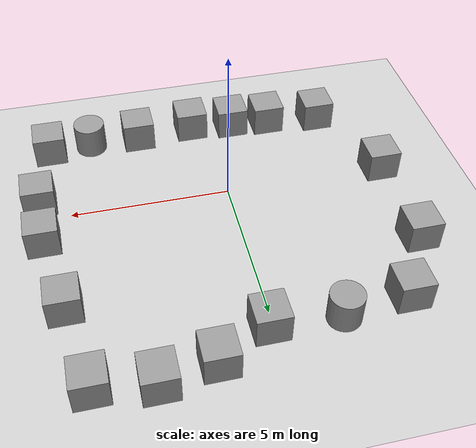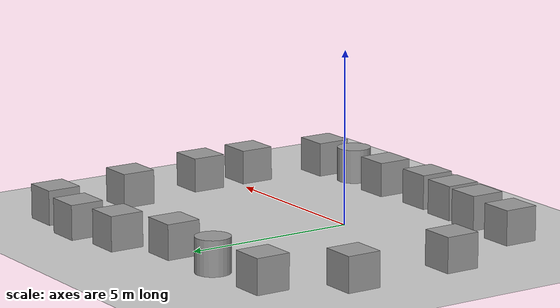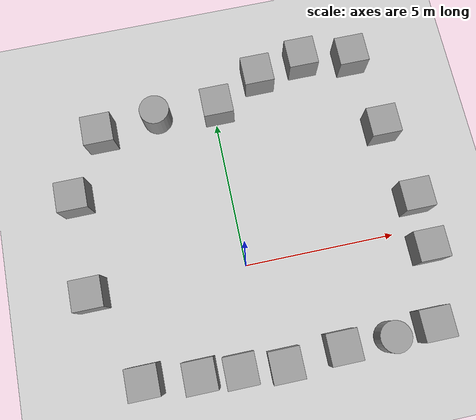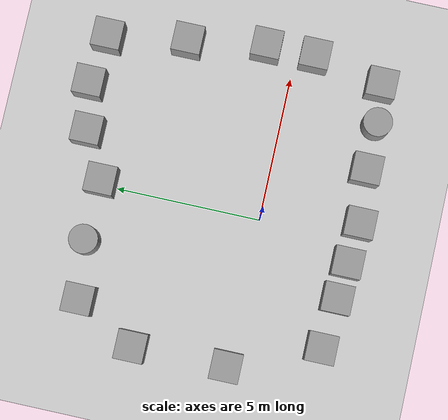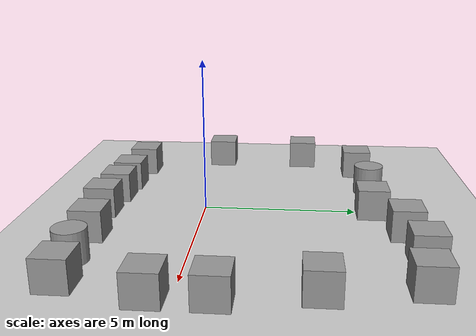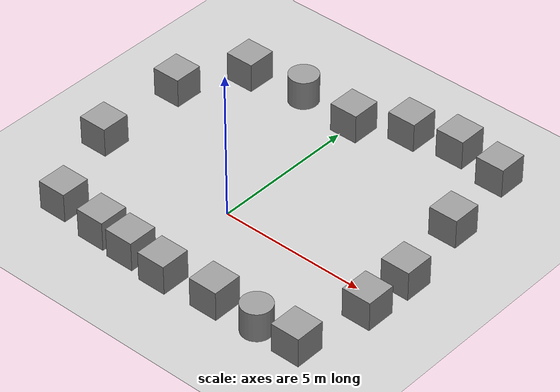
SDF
<sdf version="1.6">
 <world name="default">
  <light name="sun" type="directional">
   <pose>0 0 10 0 -0 0</pose>
   <diffuse>0.8 0.8 0.8 1</diffuse>
   <specular>0.1 0.1 0.1 1</specular>
   <attenuation>
    <range>1000</range>
    <constant>0.9</constant>
    <linear>0.01</linear>
    <quadratic>0.001</quadratic>
   </attenuation>
   <direction>-0.5 0.5 -1</direction>
  </light>
  <model name="ground_plane">
   <static>1</static>
   <link name="link">
    <collision name="collision">
     <geometry><plane><normal>0 0 1</normal><size>100 100</size></plane></geometry>
     <surface><friction><ode><mu>100</mu><mu2>50</mu2></ode></friction></surface>
    </collision>
    <visual name="visual">
     <cast_shadows>0</cast_shadows>
     <geometry><plane><normal>0 0 1</normal><size>100 100</size></plane></geometry>
     <material>
      <script><uri>file://media/materials/scripts/gazebo.material</uri><name>Gazebo/Grey</name></script>
     </material>
    </visual>
   </link>
  </model>
  <gravity>0 0 -9.8</gravity>
  <magnetic_field>6e-06 2.3e-05 -4.2e-05</magnetic_field>
  <atmosphere type="adiabatic"/>
  <physics name="default_physics" default="0" type="ode">
   <max_step_size>0.001</max_step_size>
   <real_time_factor>1</real_time_factor>
   <real_time_update_rate>1000</real_time_update_rate>
  </physics>
  <scene><ambient>0.4 0.4 0.4 1</ambient><background>0.7 0.7 0.7 1</background><shadows>1</shadows></scene>
  <spherical_coordinates>
   <surface_model>EARTH_WGS84</surface_model>
   <latitude_deg>0</latitude_deg>
   <longitude_deg>0</longitude_deg>
   <elevation>0</elevation>
   <heading_deg>0</heading_deg>
  </spherical_coordinates>
  <model name="unit_box_0">
   <pose>-0.811635 -3.18969 0.499995 -1e-05 0 0</pose>
   <link name="link">
    <inertial>
     <mass>1</mass>
     <inertia>
      <ixx>0.166667</ixx>
      <ixy>0</ixy>
      <ixz>0</ixz>
      <iyy>0.166667</iyy>
      <iyz>0</iyz>
      <izz>0.166667</izz>
     </inertia>
    </inertial>
    <collision name="collision"><geometry><box><size>1 1 1</size></box></geometry></collision>
    <visual name="visual">
     <geometry><box><size>1 1 1</size></box></geometry>
     <material>
      <script><name>Gazebo/Grey</name><uri>file://media/materials/scripts/gazebo.material</uri></script>
     </material>
    </visual>
   </link>
  </model>
  <model name="unit_box_1">
   <pose>0.577289 -3.31695 0.499995 -1e-05 0 0</pose>
   <link name="link">
    <inertial>
     <mass>1</mass>
     <inertia>
      <ixx>0.166667</ixx>
      <ixy>0</ixy>
      <ixz>0</ixz>
      <iyy>0.166667</iyy>
      <iyz>0</iyz>
      <izz>0.166667</izz>
     </inertia>
    </inertial>
    <collision name="collision"><geometry><box><size>1 1 1</size></box></geometry></collision>
    <visual name="visual">
     <geometry><box><size>1 1 1</size></box></geometry>
     <material>
      <script><name>Gazebo/Grey</name><uri>file://media/materials/scripts/gazebo.material</uri></script>
     </material>
    </visual>
   </link>
  </model>
  <model name="unit_box_2">
   <pose>-5.05961 0.060177 0.499995 0 1e-05 0</pose>
   <link name="link">
    <inertial>
     <mass>1</mass>
     <inertia>
      <ixx>0.166667</ixx>
      <ixy>0</ixy>
      <ixz>0</ixz>
      <iyy>0.166667</iyy>
      <iyz>0</iyz>
      <izz>0.166667</izz>
     </inertia>
    </inertial>
    <collision name="collision"><geometry><box><size>1 1 1</size></box></geometry></collision>
    <visual name="visual">
     <geometry><box><size>1 1 1</size></box></geometry>
     <material>
      <script><name>Gazebo/Grey</name><uri>file://media/materials/scripts/gazebo.material</uri></script>
     </material>
    </visual>
   </link>
  </model>
  <model name="unit_cylinder_0">
   <pose>-1.95702 5.62659 0.499993 -3e-06 3e-06 0</pose>
   <link name="link">
    <inertial>
     <mass>1</mass>
     <inertia><ixx>0.145833</ixx><ixy>0</ixy><ixz>0</ixz><iyy>0.145833</iyy><iyz>0</iyz><izz>0.125</izz></inertia>
    </inertial>
    <collision name="collision">
     <geometry><cylinder><radius>0.5</radius><length>1</length></cylinder></geometry>
    </collision>
    <visual name="visual">
     <geometry><cylinder><radius>0.5</radius><length>1</length></cylinder></geometry>
     <material>
      <script><name>Gazebo/Grey</name><uri>file://media/materials/scripts/gazebo.material</uri></script>
     </material>
    </visual>
   </link>
  </model>
  <model name="unit_box_3">
   <pose>-5.09488 3.29197 0.499995 0 1e-05 0</pose>
   <link name="link">
    <inertial>
     <mass>1</mass>
     <inertia>
      <ixx>0.166667</ixx>
      <ixy>0</ixy>
      <ixz>0</ixz>
      <iyy>0.166667</iyy>
      <iyz>0</iyz>
      <izz>0.166667</izz>
     </inertia>
    </inertial>
    <collision name="collision"><geometry><box><size>1 1 1</size></box></geometry></collision>
    <visual name="visual">
     <geometry><box><size>1 1 1</size></box></geometry>
     <material>
      <script><name>Gazebo/Grey</name><uri>file://media/materials/scripts/gazebo.material</uri></script>
     </material>
    </visual>
   </link>
  </model>
  <model name="unit_box_4">
   <pose>0.142793 5.53418 0.499995 0 1e-05 0</pose>
   <link name="link">
    <inertial>
     <mass>1</mass>
     <inertia>
      <ixx>0.166667</ixx>
      <ixy>0</ixy>
      <ixz>0</ixz>
      <iyy>0.166667</iyy>
      <iyz>0</iyz>
      <izz>0.166667</izz>
     </inertia>
    </inertial>
    <collision name="collision"><geometry><box><size>1 1 1</size></box></geometry></collision>
    <visual name="visual">
     <geometry><box><size>1 1 1</size></box></geometry>
     <material>
      <script><name>Gazebo/Grey</name><uri>file://media/materials/scripts/gazebo.material</uri></script>
     </material>
    </visual>
   </link>
  </model>
  <model name="unit_box_5">
   <pose>2.41988 -3.15817 0.499995 0 1e-05 0</pose>
   <link name="link">
    <inertial>
     <mass>1</mass>
     <inertia>
      <ixx>0.166667</ixx>
      <ixy>0</ixy>
      <ixz>0</ixz>
      <iyy>0.166667</iyy>
      <iyz>0</iyz>
      <izz>0.166667</izz>
     </inertia>
    </inertial>
    <collision name="collision"><geometry><box><size>1 1 1</size></box></geometry></collision>
    <visual name="visual">
     <geometry><box><size>1 1 1</size></box></geometry>
     <material>
      <script><name>Gazebo/Grey</name><uri>file://media/materials/scripts/gazebo.material</uri></script>
     </material>
    </visual>
   </link>
  </model>
  <model name="unit_box_6">
   <pose>-2.05849 -3.09481 0.499995 -1e-05 0 0</pose>
   <link name="link">
    <inertial>
     <mass>1</mass>
     <inertia>
      <ixx>0.166667</ixx>
      <ixy>0</ixy>
      <ixz>0</ixz>
      <iyy>0.166667</iyy>
      <iyz>0</iyz>
      <izz>0.166667</izz>
     </inertia>
    </inertial>
    <collision name="collision"><geometry><box><size>1 1 1</size></box></geometry></collision>
    <visual name="visual">
     <geometry><box><size>1 1 1</size></box></geometry>
     <material>
      <script><name>Gazebo/Grey</name><uri>file://media/materials/scripts/gazebo.material</uri></script>
     </material>
    </visual>
   </link>
  </model>
  <model name="unit_box_7">
   <pose>-3.78601 -2.91507 0.499995 0 1e-05 0</pose>
   <link name="link">
    <inertial>
     <mass>1</mass>
     <inertia>
      <ixx>0.166667</ixx>
      <ixy>0</ixy>
      <ixz>0</ixz>
      <iyy>0.166667</iyy>
      <iyz>0</iyz>
      <izz>0.166667</izz>
     </inertia>
    </inertial>
    <collision name="collision"><geometry><box><size>1 1 1</size></box></geometry></collision>
    <visual name="visual">
     <geometry><box><size>1 1 1</size></box></geometry>
     <material>
      <script><name>Gazebo/Grey</name><uri>file://media/materials/scripts/gazebo.material</uri></script>
     </material>
    </visual>
   </link>
  </model>
  <model name="unit_box_8">
   <pose>5.4695 3.70835 0.499995 1e-05 -0 0</pose>
   <link name="link">
    <inertial>
     <mass>1</mass>
     <inertia>
      <ixx>0.166667</ixx>
      <ixy>0</ixy>
      <ixz>0</ixz>
      <iyy>0.166667</iyy>
      <iyz>0</iyz>
      <izz>0.166667</izz>
     </inertia>
    </inertial>
    <collision name="collision"><geometry><box><size>1 1 1</size></box></geometry></collision>
    <visual name="visual">
     <geometry><box><size>1 1 1</size></box></geometry>
     <material>
      <script><name>Gazebo/Grey</name><uri>file://media/materials/scripts/gazebo.material</uri></script>
     </material>
    </visual>
   </link>
  </model>
  <model name="unit_box_9">
   <pose>5.8902 1.0458 0.499995 0 1e-05 0</pose>
   <link name="link">
    <inertial>
     <mass>1</mass>
     <inertia>
      <ixx>0.166667</ixx>
      <ixy>0</ixy>
      <ixz>0</ixz>
      <iyy>0.166667</iyy>
      <iyz>0</iyz>
      <izz>0.166667</izz>
     </inertia>
    </inertial>
    <collision name="collision"><geometry><box><size>1 1 1</size></box></geometry></collision>
    <visual name="visual">
     <geometry><box><size>1 1 1</size></box></geometry>
     <material>
      <script><name>Gazebo/Grey</name><uri>file://media/materials/scripts/gazebo.material</uri></script>
     </material>
    </visual>
   </link>
  </model>
  <model name="unit_box_10">
   <pose>5.89514 -0.642354 0.499995 -1e-05 0 0</pose>
   <link name="link">
    <inertial>
     <mass>1</mass>
     <inertia>
      <ixx>0.166667</ixx>
      <ixy>0</ixy>
      <ixz>0</ixz>
      <iyy>0.166667</iyy>
      <iyz>0</iyz>
      <izz>0.166667</izz>
     </inertia>
    </inertial>
    <collision name="collision"><geometry><box><size>1 1 1</size></box></geometry></collision>
    <visual name="visual">
     <geometry><box><size>1 1 1</size></box></geometry>
     <material>
      <script><name>Gazebo/Grey</name><uri>file://media/materials/scripts/gazebo.material</uri></script>
     </material>
    </visual>
   </link>
  </model>
  <model name="unit_box_11">
   <pose>5.39384 -3.05711 0.499995 0 1e-05 0</pose>
   <link name="link">
    <inertial>
     <mass>1</mass>
     <inertia>
      <ixx>0.166667</ixx>
      <ixy>0</ixy>
      <ixz>0</ixz>
      <iyy>0.166667</iyy>
      <iyz>0</iyz>
      <izz>0.166667</izz>
     </inertia>
    </inertial>
    <collision name="collision"><geometry><box><size>1 1 1</size></box></geometry></collision>
    <visual name="visual">
     <geometry><box><size>1 1 1</size></box></geometry>
     <material>
      <script><name>Gazebo/Grey</name><uri>file://media/materials/scripts/gazebo.material</uri></script>
     </material>
    </visual>
   </link>
  </model>
  <model name="unit_box_12">
   <pose>-3.93712 5.35977 0.499995 -1e-05 0 0</pose>
   <link name="link">
    <inertial>
     <mass>1</mass>
     <inertia>
      <ixx>0.166667</ixx>
      <ixy>0</ixy>
      <ixz>0</ixz>
      <iyy>0.166667</iyy>
      <iyz>0</iyz>
      <izz>0.166667</izz>
     </inertia>
    </inertial>
    <collision name="collision"><geometry><box><size>1 1 1</size></box></geometry></collision>
    <visual name="visual">
     <geometry><box><size>1 1 1</size></box></geometry>
     <material>
      <script><name>Gazebo/Grey</name><uri>file://media/materials/scripts/gazebo.material</uri></script>
     </material>
    </visual>
   </link>
  </model>
  <model name="unit_box_13">
   <pose>1.7159 6.36784 0.499995 -1e-05 0 0</pose>
   <link name="link">
    <inertial>
     <mass>1</mass>
     <inertia>
      <ixx>0.166667</ixx>
      <ixy>0</ixy>
      <ixz>0</ixz>
      <iyy>0.166667</iyy>
      <iyz>0</iyz>
      <izz>0.166667</izz>
     </inertia>
    </inertial>
    <collision name="collision"><geometry><box><size>1 1 1</size></box></geometry></collision>
    <visual name="visual">
     <geometry><box><size>1 1 1</size></box></geometry>
     <material>
      <script><name>Gazebo/Grey</name><uri>file://media/materials/scripts/gazebo.material</uri></script>
     </material>
    </visual>
   </link>
  </model>
  <model name="unit_cylinder_1">
   <pose>4.02843 -3.18113 0.499998 3e-06 -4e-06 0</pose>
   <link name="link">
    <inertial>
     <mass>1</mass>
     <inertia><ixx>0.145833</ixx><ixy>0</ixy><ixz>0</ixz><iyy>0.145833</iyy><iyz>0</iyz><izz>0.125</izz></inertia>
    </inertial>
    <collision name="collision">
     <geometry><cylinder><radius>0.5</radius><length>1</length></cylinder></geometry>
    </collision>
    <visual name="visual">
     <geometry><cylinder><radius>0.5</radius><length>1</length></cylinder></geometry>
     <material>
      <script><name>Gazebo/Grey</name><uri>file://media/materials/scripts/gazebo.material</uri></script>
     </material>
    </visual>
   </link>
  </model>
  <model name="unit_box_14">
   <pose>3.32941 6.67643 0.499995 -1e-05 0 0</pose>
   <link name="link">
    <inertial>
     <mass>1</mass>
     <inertia>
      <ixx>0.166667</ixx>
      <ixy>0</ixy>
      <ixz>0</ixz>
      <iyy>0.166667</iyy>
      <iyz>0</iyz>
      <izz>0.166667</izz>
     </inertia>
    </inertial>
    <collision name="collision"><geometry><box><size>1 1 1</size></box></geometry></collision>
    <visual name="visual">
     <geometry><box><size>1 1 1</size></box></geometry>
     <material>
      <script><name>Gazebo/Grey</name><uri>file://media/materials/scripts/gazebo.material</uri></script>
     </material>
    </visual>
   </link>
  </model>
  <model name="unit_box_15">
   <pose>5.04101 6.41701 0.5 0 -0 0</pose>
   <link name="link">
    <inertial>
     <mass>1</mass>
     <inertia>
      <ixx>0.166667</ixx>
      <ixy>0</ixy>
      <ixz>0</ixz>
      <iyy>0.166667</iyy>
      <iyz>0</iyz>
      <izz>0.166667</izz>
     </inertia>
    </inertial>
    <collision name="collision"><geometry><box><size>1 1 1</size></box></geometry></collision>
    <visual name="visual">
     <geometry><box><size>1 1 1</size></box></geometry>
     <material>
      <script><name>Gazebo/Grey</name><uri>file://media/materials/scripts/gazebo.material</uri></script>
     </material>
    </visual>
   </link>
  </model>
 </world>
</sdf>
